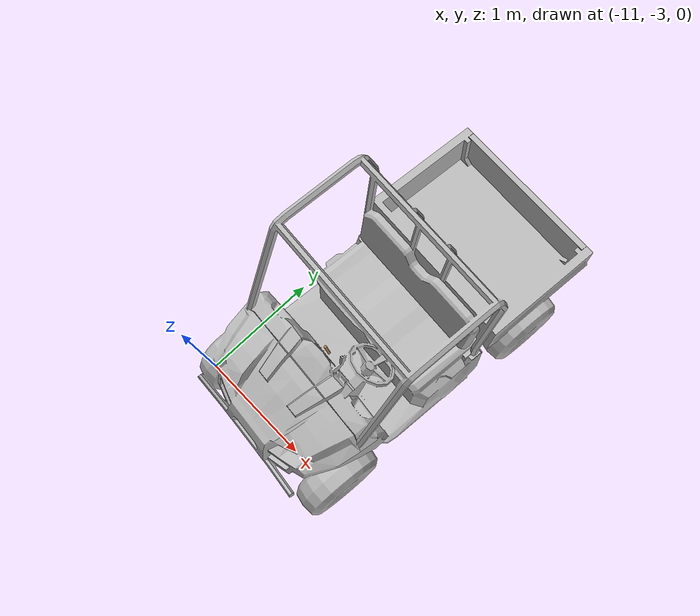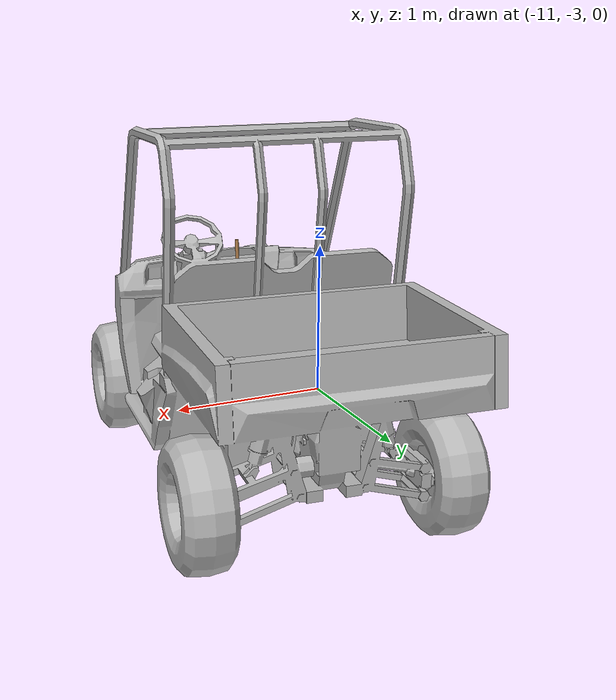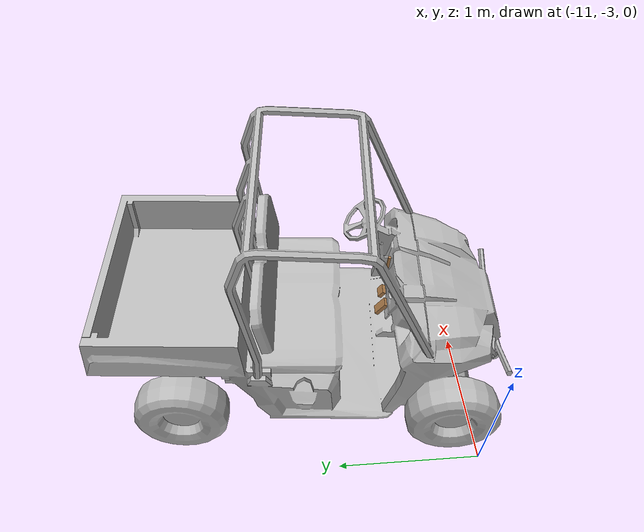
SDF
<sdf version="1.6">
 <world name="default">
  <model name="polaris_ranger_ev_clone_1">
   <static>true</static>
   <link name="chassis">
    <inertial>
     <mass>720</mass>
     <inertia><ixx>140</ixx><ixy>0</ixy><iyy>550</iyy><ixz>0</ixz><iyz>0</iyz><izz>550</izz></inertia>
    </inertial>
    <visual name="visual">
     <pose>0 0 0 0 0 -1.5708</pose>
     <geometry><mesh><uri>model://polaris_ranger_ev/meshes/polaris.dae</uri><scale>1 1 1</scale></mesh></geometry>
     <material>
      <script>
       <uri>model://polaris_ranger_ev/materials/scripts</uri>
       <uri>model://polaris_ranger_ev/materials/textures</uri>
       <name>Polaris/Diffuse</name>
      </script>
     </material>
    </visual>
    <collision name="chassis_bottom">
     <pose>0 0 0.35 0 -0 0</pose>
     <geometry><box><size>2 1 0.1</size></box></geometry>
    </collision>
    <collision name="cargo_bottom">
     <pose>-0.9 0 0.9 0 -0 0</pose>
     <geometry><box><size>0.9 1.2 0.01</size></box></geometry>
    </collision>
    <collision name="cargo_front">
     <pose>-0.45 0 1.025 0 -0 0</pose>
     <geometry><box><size>0.05 1.2 0.25</size></box></geometry>
    </collision>
    <collision name="cargo_back">
     <pose>-1.35 0 1.025 0 -0 0</pose>
     <geometry><box><size>0.05 1.2 0.25</size></box></geometry>
    </collision>
    <collision name="cargo_left">
     <pose>-0.9 0.6 1.025 0 -0 0</pose>
     <geometry><box><size>0.9 0.05 0.25</size></box></geometry>
    </collision>
    <collision name="cargo_right">
     <pose>-0.9 -0.6 1.025 0 -0 0</pose>
     <geometry><box><size>0.9 0.05 0.25</size></box></geometry>
    </collision>
    <collision name="seat">
     <pose>-0.1 0 0.625 0 -0 0</pose>
     <geometry><box><size>0.6 1 0.65</size></box></geometry>
    </collision>
    <collision name="seat_back">
     <pose>-0.3 0 1.125 0 -0.2 0</pose>
     <geometry><box><size>0.1 1 0.4</size></box></geometry>
    </collision>
    <collision name="engine">
     <pose>0.95 0 0.7 0 -0 0</pose>
     <geometry><box><size>0.58 1 0.8</size></box></geometry>
    </collision>
    <collision name="steering_column">
     <pose>0.525 0.3 1.025 0 -0.8 0</pose>
     <geometry><cylinder><radius>0.05</radius><length>0.45</length></cylinder></geometry>
    </collision>
   </link>
   <link name="rear_right_wheel">
    <pose>-0.85 -0.6 0.32 1.5708 -0 0</pose>
    <inertial>
     <mass>12</mass>
     <inertia><ixx>0.5</ixx><ixy>0</ixy><iyy>0.5</iyy><ixz>0</ixz><iyz>0</iyz><izz>1</izz></inertia>
    </inertial>
    <collision name="collision">
     <geometry><cylinder><radius>0.32</radius><length>0.23</length></cylinder></geometry>
     <surface>
      <friction><ode><mu>100000</mu><mu2>100000</mu2><slip1>0</slip1><slip2>0</slip2></ode></friction>
     </surface>
    </collision>
   </link>
   <joint name="rear_right_wheel_joint" type="revolute">
    <pose>0 0 -0.1 0 -0 0</pose>
    <child>rear_right_wheel</child>
    <parent>chassis</parent>
    <axis>
     <xyz>0 1 0</xyz>
     <use_parent_model_frame>1</use_parent_model_frame>
     <limit><lower>-1e+16</lower><upper>1e+16</upper></limit>
     <dynamics><spring_reference>0</spring_reference><spring_stiffness>0</spring_stiffness></dynamics>
    </axis>
    <physics><ode><limit><cfm>0</cfm><erp>0.9</erp></limit></ode></physics>
   </joint>
   <link name="rear_left_wheel">
    <pose>-0.85 0.6 0.32 1.5708 -0 0</pose>
    <inertial>
     <mass>12</mass>
     <inertia><ixx>0.5</ixx><ixy>0</ixy><iyy>0.5</iyy><ixz>0</ixz><iyz>0</iyz><izz>1</izz></inertia>
    </inertial>
    <collision name="collision">
     <geometry><cylinder><radius>0.32</radius><length>0.23</length></cylinder></geometry>
     <surface>
      <friction><ode><mu>100000</mu><mu2>100000</mu2><slip1>0</slip1><slip2>0</slip2></ode></friction>
     </surface>
    </collision>
   </link>
   <joint name="rear_left_wheel_joint" type="revolute">
    <child>rear_left_wheel</child>
    <parent>chassis</parent>
    <axis>
     <xyz>0 1 0</xyz>
     <use_parent_model_frame>1</use_parent_model_frame>
     <limit><lower>-1e+16</lower><upper>1e+16</upper></limit>
     <dynamics><spring_reference>0</spring_reference><spring_stiffness>0</spring_stiffness></dynamics>
    </axis>
    <physics><ode><limit><cfm>0</cfm><erp>0.9</erp></limit></ode></physics>
   </joint>
   <link name="front_right_wheel">
    <pose>1.03 -0.6 0.32 1.5708 -0 0</pose>
    <inertial>
     <mass>12</mass>
     <inertia><ixx>0.5</ixx><ixy>0</ixy><iyy>0.5</iyy><ixz>0</ixz><iyz>0</iyz><izz>1</izz></inertia>
    </inertial>
    <collision name="collision">
     <geometry><cylinder><radius>0.32</radius><length>0.23</length></cylinder></geometry>
     <surface>
      <friction><ode><mu>100000</mu><mu2>100000</mu2><slip1>0</slip1><slip2>0</slip2></ode></friction>
     </surface>
    </collision>
   </link>
   <link name="front_right_wheel_steering_block">
    <pose>1.03 -0.5 0.32 1.5708 -0 0</pose>
    <inertial>
     <mass>1</mass>
     <inertia><ixx>1</ixx><ixy>0</ixy><iyy>1</iyy><ixz>0</ixz><iyz>0</iyz><izz>1</izz></inertia>
    </inertial>
    <collision name="collision">
     <geometry><cylinder><radius>0.05</radius><length>0.01</length></cylinder></geometry>
    </collision>
   </link>
   <joint name="front_right_steering_joint" type="revolute">
    <child>front_right_wheel_steering_block</child>
    <parent>chassis</parent>
    <axis>
     <xyz>0 0 1</xyz>
     <limit><lower>-1</lower><upper>1</upper></limit>
     <use_parent_model_frame>1</use_parent_model_frame>
     <dynamics><spring_reference>0</spring_reference><spring_stiffness>0</spring_stiffness></dynamics>
    </axis>
    <physics><ode><limit><cfm>0</cfm><erp>0.9</erp></limit></ode></physics>
   </joint>
   <joint name="front_right_wheel_joint" type="revolute">
    <child>front_right_wheel</child>
    <parent>front_right_wheel_steering_block</parent>
    <axis>
     <xyz>0 1 0</xyz>
     <use_parent_model_frame>1</use_parent_model_frame>
     <limit><lower>-1e+16</lower><upper>1e+16</upper></limit>
     <dynamics><spring_reference>0</spring_reference><spring_stiffness>0</spring_stiffness></dynamics>
    </axis>
    <physics><ode><limit><cfm>0</cfm><erp>0.9</erp></limit></ode></physics>
   </joint>
   <link name="front_left_wheel">
    <pose>1.03 0.6 0.32 1.5708 -0 0</pose>
    <inertial>
     <mass>12</mass>
     <inertia><ixx>0.5</ixx><ixy>0</ixy><iyy>0.5</iyy><ixz>0</ixz><iyz>0</iyz><izz>1</izz></inertia>
    </inertial>
    <collision name="collision">
     <geometry><cylinder><radius>0.32</radius><length>0.23</length></cylinder></geometry>
     <surface>
      <friction><ode><mu>100000</mu><mu2>100000</mu2><slip1>0</slip1><slip2>0</slip2></ode></friction>
     </surface>
    </collision>
   </link>
   <link name="front_left_wheel_steering_block">
    <pose>1.03 0.5 0.32 1.5708 -0 0</pose>
    <inertial>
     <mass>1</mass>
     <inertia><ixx>1</ixx><ixy>0</ixy><iyy>1</iyy><ixz>0</ixz><iyz>0</iyz><izz>1</izz></inertia>
    </inertial>
    <collision name="collision">
     <geometry><cylinder><radius>0.05</radius><length>0.01</length></cylinder></geometry>
    </collision>
   </link>
   <joint name="front_left_steering_joint" type="revolute">
    <child>front_left_wheel_steering_block</child>
    <parent>chassis</parent>
    <axis>
     <xyz>0 0 1</xyz>
     <limit><lower>-1</lower><upper>1</upper></limit>
     <use_parent_model_frame>1</use_parent_model_frame>
     <dynamics><spring_reference>0</spring_reference><spring_stiffness>0</spring_stiffness></dynamics>
    </axis>
    <physics><ode><limit><cfm>0</cfm><erp>0.9</erp></limit></ode></physics>
   </joint>
   <joint name="front_left_wheel_joint" type="revolute">
    <child>front_left_wheel</child>
    <parent>front_left_wheel_steering_block</parent>
    <axis>
     <xyz>0 1 0</xyz>
     <use_parent_model_frame>1</use_parent_model_frame>
     <limit><lower>-1e+16</lower><upper>1e+16</upper></limit>
     <dynamics><spring_reference>0</spring_reference><spring_stiffness>0</spring_stiffness></dynamics>
    </axis>
    <physics><ode><limit><cfm>0</cfm><erp>0.9</erp></limit></ode></physics>
   </joint>
   <link name="gas_pedal">
    <pose>0.53 0.14 0.56 0 -1 0</pose>
    <gravity>0</gravity>
    <inertial>
     <mass>0.1</mass>
     <inertia><ixx>0.01</ixx><ixy>0</ixy><ixz>0</ixz><iyy>0.01</iyy><iyz>0</iyz><izz>0.01</izz></inertia>
    </inertial>
    <collision name="gas_pedal_collision"><geometry><box><size>0.12 0.07 0.03</size></box></geometry></collision>
    <visual name="gas_pedal_visual">
     <geometry><box><size>0.12 0.07 0.03</size></box></geometry>
     <material>
      <script><uri>file://media/materials/scripts/gazebo.material</uri><name>Gazebo/Wood</name></script>
      <ambient>0.2 0.2 0.2 1</ambient>
      <diffuse>0.2 0.2 0.2 1</diffuse>
      <specular>0.2 0.2 0.2 1</specular>
      <emissive>0.5 0.5 0.5 1</emissive>
     </material>
    </visual>
   </link>
   <link name="brake_pedal">
    <gravity>0</gravity>
    <pose>0.54 0.27 0.58 0 -1 0</pose>
    <inertial>
     <mass>0.1</mass>
     <inertia><ixx>0.01</ixx><ixy>0</ixy><ixz>0</ixz><iyy>0.01</iyy><iyz>0</iyz><izz>0.01</izz></inertia>
    </inertial>
    <collision name="brake_pedal_collision">
     <geometry><box><size>0.06 0.08 0.03</size></box></geometry>
    </collision>
    <visual name="brake_pedal_visual">
     <geometry><box><size>0.06 0.08 0.03</size></box></geometry>
     <material>
      <script><uri>file://media/materials/scripts/gazebo.material</uri><name>Gazebo/Wood</name></script>
      <ambient>0.2 0.2 0.2 1</ambient>
      <diffuse>0.2 0.2 0.2 1</diffuse>
      <specular>0.2 0.2 0.2 1</specular>
      <emissive>0.5 0.5 0.5 1</emissive>
     </material>
    </visual>
   </link>
   <link name="steering_wheel">
    <pose>0.37 0.3 1.2 0 -0.8 0</pose>
    <inertial>
     <mass>1</mass>
     <inertia><ixx>0.1</ixx><ixy>0</ixy><ixz>0</ixz><iyy>0.1</iyy><iyz>0</iyz><izz>1</izz></inertia>
    </inertial>
    <collision name="steering_wheel_post_left">
     <pose>0 0.08 0 1.5708 -0 0</pose>
     <geometry><cylinder><radius>0.02</radius><length>0.15</length></cylinder></geometry>
    </collision>
    <collision name="steering_wheel_post_right">
     <pose>0 -0.08 0 1.5708 -0 0</pose>
     <geometry><cylinder><radius>0.02</radius><length>0.15</length></cylinder></geometry>
    </collision>
    <collision name="steering_wheel_post_middle">
     <pose>-0.08 0 0 3.14159 1.57079 3.14159</pose>
     <geometry><cylinder><radius>0.02</radius><length>0.15</length></cylinder></geometry>
    </collision>
    <collision name="collision00">
     <pose>0.15 0 0 3.14159 1.57079 -1.57079</pose>
     <geometry><cylinder><length>0.105066</length><radius>0.01</radius></cylinder></geometry>
    </collision>
    <collision name="collision01">
     <pose>0.121353 0.088168 0 3.14159 1.57079 -0.942483</pose>
     <geometry><cylinder><length>0.105066</length><radius>0.01</radius></cylinder></geometry>
    </collision>
    <collision name="collision02">
     <pose>0.046353 0.142658 0 3.14159 1.57079 -0.314163</pose>
     <geometry><cylinder><length>0.105066</length><radius>0.01</radius></cylinder></geometry>
    </collision>
    <collision name="collision03">
     <pose>-0.046353 0.142658 0 3.14159 1.57079 0.314163</pose>
     <geometry><cylinder><length>0.105066</length><radius>0.01</radius></cylinder></geometry>
    </collision>
    <collision name="collision04">
     <pose>-0.121353 0.088168 0 -3.14159 1.57079 0.942483</pose>
     <geometry><cylinder><length>0.105066</length><radius>0.01</radius></cylinder></geometry>
    </collision>
    <collision name="collision05">
     <pose>-0.15 0 0 -3.14159 1.57079 1.57079</pose>
     <geometry><cylinder><length>0.105066</length><radius>0.01</radius></cylinder></geometry>
    </collision>
    <collision name="collision06">
     <pose>-0.121353 -0.088168 0 3.14159 1.57079 2.19912</pose>
     <geometry><cylinder><length>0.105066</length><radius>0.01</radius></cylinder></geometry>
    </collision>
    <collision name="collision07">
     <pose>-0.046353 -0.142658 0 -3.14159 1.57079 2.82743</pose>
     <geometry><cylinder><length>0.105066</length><radius>0.01</radius></cylinder></geometry>
    </collision>
    <collision name="collision08">
     <pose>0.046353 -0.142658 0 3.14159 1.57079 -2.82743</pose>
     <geometry><cylinder><length>0.105066</length><radius>0.01</radius></cylinder></geometry>
    </collision>
    <collision name="collision09">
     <pose>0.121353 -0.088168 0 -3.14159 1.57079 -2.19911</pose>
     <geometry><cylinder><length>0.105066</length><radius>0.01</radius></cylinder></geometry>
    </collision>
   </link>
   <link name="hand_brake">
    <pose>0.5 0 1.05 3.14159 -0.058407 3.14159</pose>
    <inertial>
     <mass>1</mass>
     <pose>0 0 -0.15 0 -0 0</pose>
     <inertia><ixx>0.1</ixx><ixy>0</ixy><ixz>0</ixz><iyy>0.1</iyy><iyz>0</iyz><izz>1</izz></inertia>
    </inertial>
    <collision name="hand_brake_collision">
     <pose>0 0 -0.1 0 -0 0</pose>
     <geometry><cylinder><radius>0.01</radius><length>0.2</length></cylinder></geometry>
    </collision>
    <visual name="hand_brake_visual">
     <pose>0 0 -0.1 0 -0 0</pose>
     <geometry><cylinder><radius>0.01</radius><length>0.2</length></cylinder></geometry>
     <material>
      <script><uri>file://media/materials/scripts/gazebo.material</uri><name>Gazebo/Wood</name></script>
     </material>
    </visual>
   </link>
   <joint name="gas_joint" type="prismatic">
    <parent>chassis</parent>
    <child>gas_pedal</child>
    <axis>
     <xyz>1 0 -1</xyz>
     <limit><lower>0</lower><upper>0.15</upper></limit>
     <use_parent_model_frame>1</use_parent_model_frame>
     <dynamics><spring_reference>0</spring_reference><spring_stiffness>0</spring_stiffness></dynamics>
    </axis>
   </joint>
   <joint name="brake_joint" type="prismatic">
    <parent>chassis</parent>
    <child>brake_pedal</child>
    <axis>
     <xyz>1 0 -0.6</xyz>
     <limit><lower>0</lower><upper>0.15</upper></limit>
     <use_parent_model_frame>1</use_parent_model_frame>
     <dynamics><spring_reference>0</spring_reference><spring_stiffness>0</spring_stiffness></dynamics>
    </axis>
   </joint>
   <joint name="steering_joint" type="revolute">
    <pose>0 0 0 1.5708 -0.8 0</pose>
    <parent>chassis</parent>
    <child>steering_wheel</child>
    <axis>
     <xyz>-1 0 1.023</xyz>
     <limit><lower>-7.853</lower><upper>7.853</upper></limit>
     <use_parent_model_frame>1</use_parent_model_frame>
     <dynamics><spring_reference>0</spring_reference><spring_stiffness>0</spring_stiffness></dynamics>
    </axis>
   </joint>
   <joint name="hand_brake_joint" type="revolute">
    <parent>chassis</parent>
    <child>hand_brake</child>
    <axis>
     <xyz>0 -1 0</xyz>
     <limit><lower>0</lower><upper>0.6</upper></limit>
     <use_parent_model_frame>1</use_parent_model_frame>
     <dynamics><spring_reference>0</spring_reference><spring_stiffness>0</spring_stiffness></dynamics>
    </axis>
   </joint>
   <pose>-10.1199 -1.85785 -4.9e-05 2e-06 5.3e-05 -1.65541</pose>
  </model>
 </world>
</sdf>
